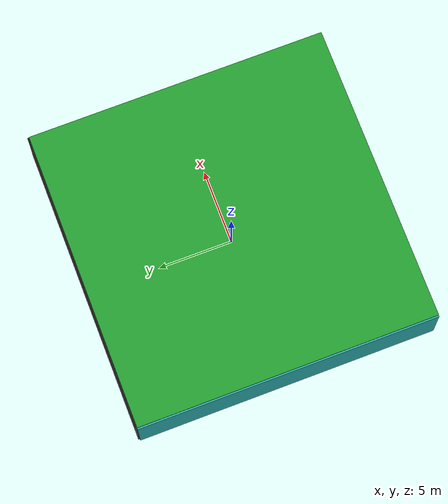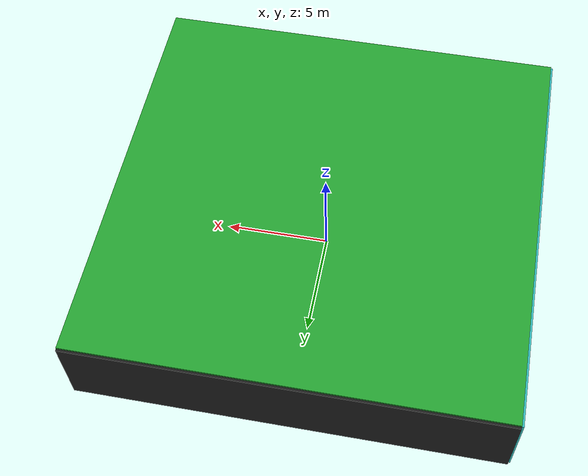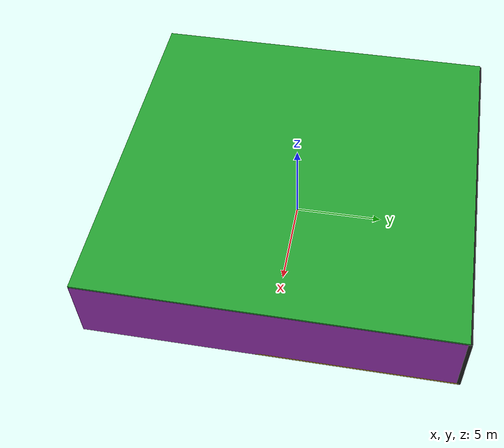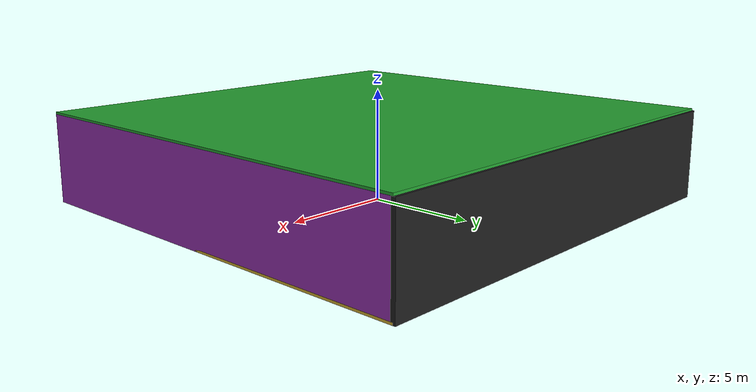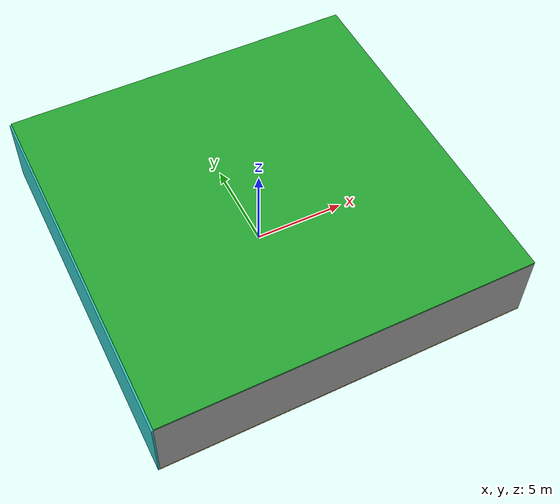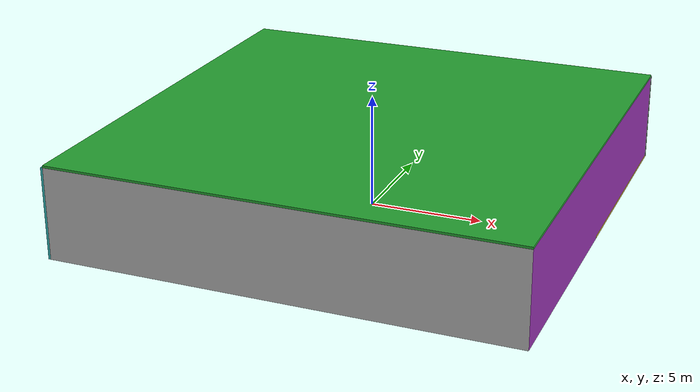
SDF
<sdf version="1.4">
 <world name="default">
  <physics type="ode">
   <max_step_size>0.001</max_step_size>
   <real_time_factor>1</real_time_factor>
   <real_time_update_rate>1000</real_time_update_rate>
   <gravity>0 0 -9.8</gravity>
  </physics>
  <scene><ambient>0.4 0.4 0.4 1</ambient><background>0.7 0.7 0.7 1</background><shadows>1</shadows></scene>
  <model name="Surrounding">
   <static>1</static>
   <link name="Ceiling">
    <collision name="Ceiling_Collision"><geometry><box><size>20 20 0.1</size></box></geometry></collision>
    <visual name="Ceiling_Visual">
     <geometry><box><size>20 20 0.1</size></box></geometry>
     <material>
      <script><uri>file://media/materials/scripts/gazebo.material</uri><name>Gazebo/GreenGlow</name></script>
     </material>
    </visual>
    <pose>0 0 4.05 0 0 0</pose>
   </link>
   <link name="Wall_South">
    <collision name="Wall_South_Collision">
     <geometry><box><size>20 0 4</size></box></geometry>
     <pose>0 0 2 0 -0 0</pose>
    </collision>
    <visual name="Wall_South_Visual">
     <pose>0 0 2 0 -0 0</pose>
     <geometry><box><size>20 0 4</size></box></geometry>
     <material>
      <script><uri>file://media/materials/scripts/gazebo.material</uri><name>Gazebo/LightOn</name></script>
     </material>
    </visual>
    <velocity_decay><linear>0</linear><angular>0</angular></velocity_decay>
    <pose>0 -10 0 0 -0 0</pose>
   </link>
   <link name="Wall_East">
    <collision name="Wall_21_Collision">
     <geometry><box><size>20 0 4</size></box></geometry>
     <pose>0 0 2 0 -0 0</pose>
    </collision>
    <visual name="Wall_21_Visual">
     <pose>0 0 2 0 -0 0</pose>
     <geometry><box><size>20 0 4</size></box></geometry>
     <material>
      <script><uri>file://media/materials/scripts/gazebo.material</uri><name>Gazebo/PurpleGlow</name></script>
     </material>
    </visual>
    <velocity_decay><linear>0</linear><angular>0</angular></velocity_decay>
    <pose>10 0 0 0 -0 1.5708</pose>
   </link>
   <link name="Wall_North">
    <collision name="Wall_22_Collision">
     <geometry><box><size>20 0.2 4</size></box></geometry>
     <pose>0 0 2 0 -0 0</pose>
    </collision>
    <visual name="Wall_22_Visual">
     <pose>0 0 2 0 -0 0</pose>
     <geometry><box><size>20 0.2 4</size></box></geometry>
     <material>
      <script><uri>file://media/materials/scripts/gazebo.material</uri><name>Gazebo/Black</name></script>
     </material>
    </visual>
    <velocity_decay><linear>0</linear><angular>0</angular></velocity_decay>
    <pose>0 10 0 0 -0 0</pose>
   </link>
   <link name="Wall_West">
    <collision name="Wall_23_Collision">
     <geometry><box><size>20 0.2 4</size></box></geometry>
     <pose>0 0 2 0 -0 0</pose>
    </collision>
    <visual name="Wall_23_Visual">
     <pose>0 0 2 0 -0 0</pose>
     <geometry><box><size>20 0.2 4</size></box></geometry>
     <material>
      <script><uri>file://media/materials/scripts/gazebo.material</uri><name>Gazebo/Turquoise</name></script>
     </material>
    </visual>
    <velocity_decay><linear>0</linear><angular>0</angular></velocity_decay>
    <pose>-10 0 0 0 0 -1.5708</pose>
   </link>
   <link name="Ground_link">
    <collision name="collision">
     <pose>0 0 .05 0 -0 0</pose>
     <geometry><box><size>20 20 0.1</size></box></geometry>
    </collision>
    <visual name="visual">
     <pose>0 0 .05 0 -0 0</pose>
     <geometry><box><size>20 20 0.1</size></box></geometry>
     <material>
      <script><uri>file://media/materials/scripts/gazebo.material</uri><name>Gazebo/Gold</name></script>
     </material>
    </visual>
   </link>
   <static>1</static>
  </model>
  <spherical_coordinates>
   <surface_model>EARTH_WGS84</surface_model>
   <latitude_deg>0</latitude_deg>
   <longitude_deg>0</longitude_deg>
   <elevation>0</elevation>
   <heading_deg>0</heading_deg>
  </spherical_coordinates>
  <light name="lightball_0" type="diffuse">
   <diffuse>0.8 0.8 0.8 1</diffuse>
   <specular>0.2 0.2 0.2 1</specular>
   <attenuation>
    <range>100</range>
    <constant>0.7</constant>
    <linear>0.01</linear>
    <quadratic>0.001</quadratic>
   </attenuation>
   <direction>-0.5 0.1 -0.9</direction>
   <pose>9.12323713502 2.72716024017 1.19115683693 0 0 0</pose>
  </light>
  <light name="lightball_1" type="diffuse">
   <diffuse>0.8 0.8 0.8 1</diffuse>
   <specular>0.2 0.2 0.2 1</specular>
   <attenuation>
    <range>100</range>
    <constant>0.7</constant>
    <linear>0.01</linear>
    <quadratic>0.001</quadratic>
   </attenuation>
   <direction>-0.5 0.1 -0.9</direction>
   <pose>-5.64132037397 0.540588104152 3.69815877646 0 0 0</pose>
  </light>
  <light name="lightball_2" type="diffuse">
   <diffuse>0.8 0.8 0.8 1</diffuse>
   <specular>0.2 0.2 0.2 1</specular>
   <attenuation>
    <range>100</range>
    <constant>0.7</constant>
    <linear>0.01</linear>
    <quadratic>0.001</quadratic>
   </attenuation>
   <direction>-0.5 0.1 -0.9</direction>
   <pose>1.43462026494 0.799960619113 1.50615926602 0 0 0</pose>
  </light>
  <light name="lightball_3" type="diffuse">
   <diffuse>0.8 0.8 0.8 1</diffuse>
   <specular>0.2 0.2 0.2 1</specular>
   <attenuation>
    <range>100</range>
    <constant>0.7</constant>
    <linear>0.01</linear>
    <quadratic>0.001</quadratic>
   </attenuation>
   <direction>-0.5 0.1 -0.9</direction>
   <pose>-3.41263415904 -6.7085868611 2.87229993282 0 0 0</pose>
  </light>
  <light name="lightball_4" type="diffuse">
   <diffuse>0.8 0.8 0.8 1</diffuse>
   <specular>0.2 0.2 0.2 1</specular>
   <attenuation>
    <range>100</range>
    <constant>0.7</constant>
    <linear>0.01</linear>
    <quadratic>0.001</quadratic>
   </attenuation>
   <direction>-0.5 0.1 -0.9</direction>
   <pose>-2.97271056989 -5.39401364864 2.78483703689 0 0 0</pose>
  </light>
  <light name="lightball_5" type="diffuse">
   <diffuse>0.8 0.8 0.8 1</diffuse>
   <specular>0.2 0.2 0.2 1</specular>
   <attenuation>
    <range>100</range>
    <constant>0.7</constant>
    <linear>0.01</linear>
    <quadratic>0.001</quadratic>
   </attenuation>
   <direction>-0.5 0.1 -0.9</direction>
   <pose>-0.605397007316 -8.09641943875 0.941810756626 0 0 0</pose>
  </light>
  <light name="lightball_6" type="diffuse">
   <diffuse>0.8 0.8 0.8 1</diffuse>
   <specular>0.2 0.2 0.2 1</specular>
   <attenuation>
    <range>100</range>
    <constant>0.7</constant>
    <linear>0.01</linear>
    <quadratic>0.001</quadratic>
   </attenuation>
   <direction>-0.5 0.1 -0.9</direction>
   <pose>-4.11431374612 -5.89282286734 1.28686196459 0 0 0</pose>
  </light>
  <light name="lightball_7" type="diffuse">
   <diffuse>0.8 0.8 0.8 1</diffuse>
   <specular>0.2 0.2 0.2 1</specular>
   <attenuation>
    <range>100</range>
    <constant>0.7</constant>
    <linear>0.01</linear>
    <quadratic>0.001</quadratic>
   </attenuation>
   <direction>-0.5 0.1 -0.9</direction>
   <pose>-8.16209043659 8.61250784451 3.40175348599 0 0 0</pose>
  </light>
  <light name="lightball_8" type="diffuse">
   <diffuse>0.8 0.8 0.8 1</diffuse>
   <specular>0.2 0.2 0.2 1</specular>
   <attenuation>
    <range>100</range>
    <constant>0.7</constant>
    <linear>0.01</linear>
    <quadratic>0.001</quadratic>
   </attenuation>
   <direction>-0.5 0.1 -0.9</direction>
   <pose>5.8860634281 1.59938997073 2.34222038437 0 0 0</pose>
  </light>
  <include>
   <uri>model://construction_cone</uri>
   <pose>-4.1243252906 0.839621368998 0 0 0 1.30161785825</pose>
  </include>
  <include><uri>model://cabinet</uri><pose>-1.36930653104 -7.8466522843 0 0 0 2.91712405357</pose></include>
  <include><uri>model://table</uri><pose>4.06451681741 -5.69424394677 0 0 0 2.15020879234</pose></include>
 </world>
</sdf>

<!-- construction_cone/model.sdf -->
<sdf version="1.5">
  <model name="Construction Cone">
    <link name="link">
      <collision name="collision">
        <geometry>
          <mesh>
            <scale>10 10 10</scale>
            <uri>file://isr-testbed/construction_cone/meshes/construction_cone.dae</uri>
          </mesh>
        </geometry>
      </collision>
      <visual name="visual">
        <geometry>
          <mesh>
            <scale>10 10 10</scale>
            <uri>file://isr-testbed/construction_cone/meshes/construction_cone.dae</uri>
          </mesh>
        </geometry>
      </visual>
    </link>
  </model>
</sdf>

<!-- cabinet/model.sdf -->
<sdf version="1.5">
  <model name="cabinet">
    <static>true</static>
    <link name="cabinet_bottom_plate">
      <inertial>
        <pose>0 0 -1 0 0 0</pose>
        <inertia>
          <ixx>2.050000</ixx>
          <ixy>0</ixy>
          <ixz>0</ixz>
          <iyy>2.050000</iyy>
          <iyz>0</iyz>
          <izz>2.050000</izz>
        </inertia>
        <mass>25.000000</mass>
      </inertial>
      <collision name="cabinet_bottom_plate_geom">
        <pose>0 0 0.010000 0 0 0</pose>
        <geometry>
          <box>
            <size>0.450000 0.450000 0.020000</size>
          </box>
        </geometry>
      </collision>
      <visual name="cabinet_bottom_plate_geom_visual">
        <pose>0 0 0.010000 0 0 0</pose>
        <geometry>
          <box>
            <size>0.450000 0.450000 0.020000</size>
          </box>
        </geometry>
        <material>
          <script>
            <uri>model://media/materials/scripts/gazebo.material</uri>
            <name>Gazebo/Wood</name>
          </script>
        </material>
      </visual>
      <collision name="cabinet_bottom_plate_geom_cabinet_back_plate">
        <pose>0.235000 0 0.510000 0 0 0</pose>
        <geometry>
          <box>
            <size>0.020000 0.450000 1.020000</size>
          </box>
        </geometry>
      </collision>
      <visual name="cabinet_bottom_plate_geom_cabinet_back_plate_visual">
        <pose>0.235000 0 0.510000 0 0 0</pose>
        <geometry>
          <box>
            <size>0.020000 0.450000 1.020000</size>
          </box>
        </geometry>
        <material>
          <script>
            <uri>model://media/materials/scripts/gazebo.material</uri>
            <name>Gazebo/Wood</name>
          </script>
        </material>
      </visual>
      <collision name="cabinet_bottom_plate_geom_cabinet_left_plate">
        <pose>0 0.235000 0.510000 0 0 0</pose>
        <geometry>
          <box>
            <size>0.450000 0.020000 1.020000</size>
          </box>
        </geometry>
      </collision>
      <visual name="cabinet_bottom_plate_geom_cabinet_left_plate_visual">
        <pose>0 0.235000 0.510000 0 0 0</pose>
        <geometry>
          <box>
            <size>0.450000 0.020000 1.020000</size>
          </box>
        </geometry>
        <material>
          <script>
            <uri>model://media/materials/scripts/gazebo.material</uri>
            <name>Gazebo/Wood</name>
          </script>
        </material>
      </visual>
      <collision name="cabinet_bottom_plate_geom_cabinet_middle_plate">
        <pose>0 0 0.510000 0 0 0</pose>
        <geometry>
          <box>
            <size>0.450000 0.450000 0.020000</size>
          </box>
        </geometry>
      </collision>
      <visual name="cabinet_bottom_plate_geom_cabinet_middle_plate_visual">
        <pose>0 0 0.510000 0 0 0</pose>
        <geometry>
          <box>
            <size>0.450000 0.450000 0.020000</size>
          </box>
        </geometry>
        <material>
          <script>
            <uri>model://media/materials/scripts/gazebo.material</uri>
            <name>Gazebo/Wood</name>
          </script>
        </material>
      </visual>
      <collision name="cabinet_bottom_plate_geom_cabinet_right_plate">
        <pose>0 -0.235000 0.510000 0 0 0</pose>
        <geometry>
          <box>
            <size>0.450000 0.020000 1.020000</size>
          </box>
        </geometry>
      </collision>
      <visual name="cabinet_bottom_plate_geom_cabinet_right_plate_visual">
        <pose>0 -0.235000 0.510000 0 0 0</pose>
        <geometry>
          <box>
            <size>0.450000 0.020000 1.020000</size>
          </box>
        </geometry>
        <material>
          <script>
            <uri>model://media/materials/scripts/gazebo.material</uri>
            <name>Gazebo/Wood</name>
          </script>
        </material>
      </visual>
      <collision name="cabinet_bottom_plate_geom_cabinet_top_plate">
        <pose>0 0 1.010000 0 0 0</pose>
        <geometry>
          <box>
            <size>0.450000 0.450000 0.020000</size>
          </box>
        </geometry>
      </collision>
      <visual name="cabinet_bottom_plate_geom_cabinet_top_plate_visual">
        <pose>0 0 1.010000 0 0 0</pose>
        <geometry>
          <box>
            <size>0.450000 0.450000 0.020000</size>
          </box>
        </geometry>
        <material>
          <script>
            <uri>model://media/materials/scripts/gazebo.material</uri>
            <name>Gazebo/Wood</name>
          </script>
        </material>
      </visual>
    </link>
  </model>
</sdf>

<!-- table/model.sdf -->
<sdf version="1.5">
  <model name="table">
    <static>true</static>
    <link name="link">
      <collision name="surface">
        <pose>0 0 1.0 0 0 0</pose>
        <geometry>
          <box>
            <size>1.5 0.8 0.03</size>
          </box>
        </geometry>
        <surface>
          <friction>
            <ode>
              <mu>0.6</mu>
              <mu2>0.6</mu2>
            </ode>
          </friction>
        </surface>
      </collision>
      <visual name="visual1">
        <pose>0 0 1.0 0 0 0</pose>
        <geometry>
          <box>
            <size>1.5 0.8 0.03</size>
          </box>
        </geometry>
        <material>
          <script>
            <uri>model://media/materials/scripts/gazebo.material</uri>
            <name>Gazebo/Wood</name>
          </script>
        </material>
      </visual>
      <collision name="front_left_leg">
        <pose>0.68 0.38 0.5 0 0 0</pose>
        <geometry>
          <cylinder>
            <radius>0.02</radius>
            <length>1.0</length>
          </cylinder>
        </geometry>
      </collision>
      <visual name="front_left_leg">
        <pose>0.68 0.38 0.5 0 0 0</pose>
        <geometry>
          <cylinder>
            <radius>0.02</radius>
            <length>1.0</length>
          </cylinder>
        </geometry>
        <material>
          <script>
            <uri>model://media/materials/scripts/gazebo.material</uri>
            <name>Gazebo/Grey</name>
          </script>
        </material>
      </visual>
      <collision name="front_right_leg">
        <pose>0.68 -0.38 0.5 0 0 0</pose>
        <geometry>
          <cylinder>
            <radius>0.02</radius>
            <length>1.0</length>
          </cylinder>
        </geometry>
      </collision>
      <visual name="front_right_leg">
        <pose>0.68 -0.38 0.5 0 0 0</pose>
        <geometry>
          <cylinder>
            <radius>0.02</radius>
            <length>1.0</length>
          </cylinder>
        </geometry>
        <material>
          <script>
            <uri>model://media/materials/scripts/gazebo.material</uri>
            <name>Gazebo/Grey</name>
          </script>
        </material>
      </visual>
      <collision name="back_right_leg">
        <pose>-0.68 -0.38 0.5 0 0 0</pose>
        <geometry>
          <cylinder>
            <radius>0.02</radius>
            <length>1.0</length>
          </cylinder>
        </geometry>
      </collision>
      <visual name="back_right_leg">
        <pose>-0.68 -0.38 0.5 0 0 0</pose>
        <geometry>
          <cylinder>
            <radius>0.02</radius>
            <length>1.0</length>
          </cylinder>
        </geometry>
        <material>
          <script>
            <uri>model://media/materials/scripts/gazebo.material</uri>
            <name>Gazebo/Grey</name>
          </script>
        </material>
      </visual>
      <collision name="back_left_leg">
        <pose>-0.68 0.38 0.5 0 0 0</pose>
        <geometry>
          <cylinder>
            <radius>0.02</radius>
            <length>1.0</length>
          </cylinder>
        </geometry>
      </collision>
      <visual name="back_left_leg">
        <pose>-0.68 0.38 0.5 0 0 0</pose>
        <geometry>
          <cylinder>
            <radius>0.02</radius>
            <length>1.0</length>
          </cylinder>
        </geometry>
        <material>
          <script>
            <uri>model://media/materials/scripts/gazebo.material</uri>
            <name>Gazebo/Grey</name>
          </script>
        </material>
      </visual>
    </link>
  </model>
</sdf>
